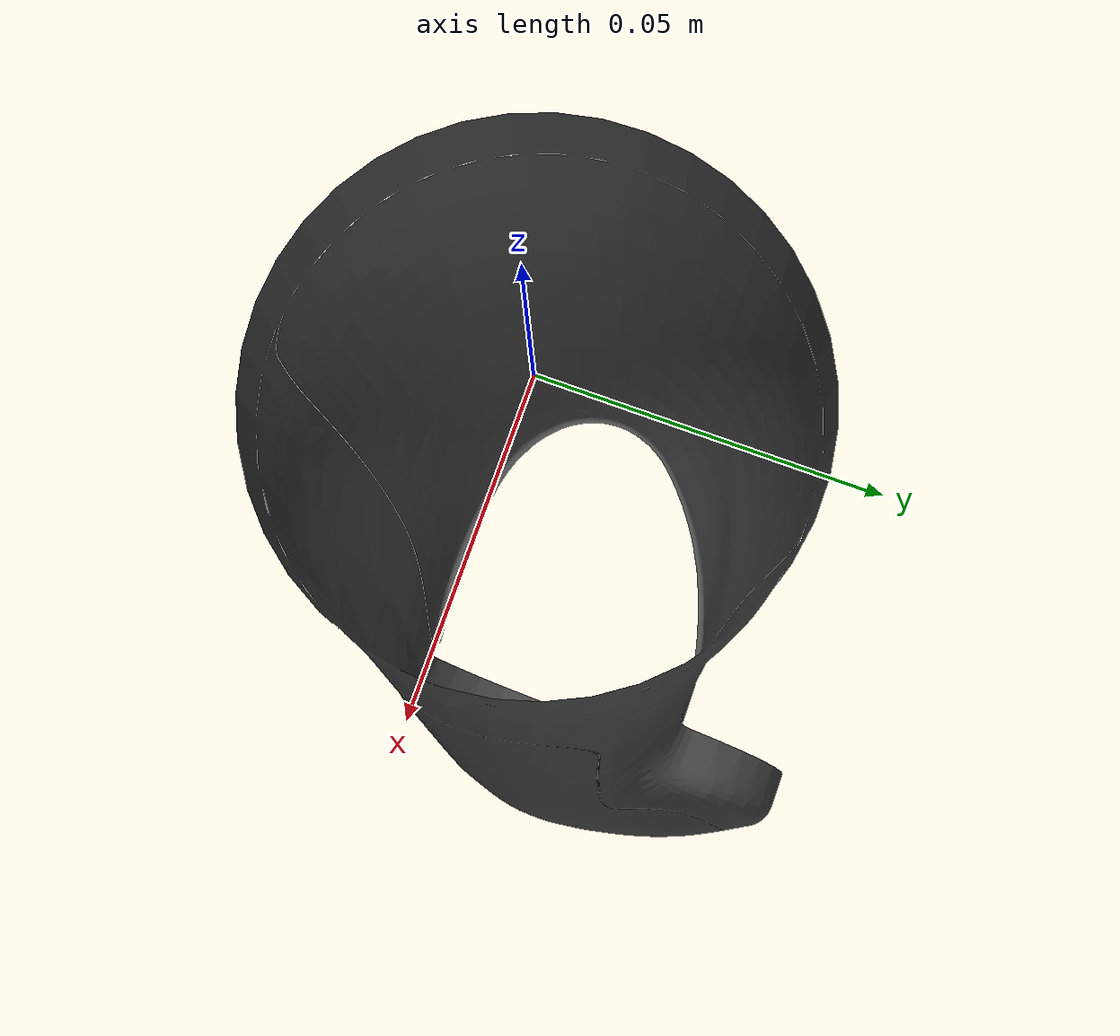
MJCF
<mujoco model="arm1_link">
  <default>
    <default class="visual">
      <geom group="2" type="mesh" contype="0" conaffinity="0"/>
    </default>
    <default class="collision">
      <geom group="3" type="mesh"/>
    </default>
  </default>
  <asset>
    <material name="mtl_arm1_link" specular="0.20000000000000004" shininess="1.0" rgba="0.29803922 0.29803922 0.29803922 1.0"/>
    <mesh file="arm1_link.obj"/>
  </asset>
  <worldbody>
    <body name="arm1_link">
      <geom material="mtl_arm1_link" mesh="arm1_link" class="visual"/>
      <geom mesh="arm1_link" class="collision"/>
    </body>
  </worldbody>
</mujoco>
